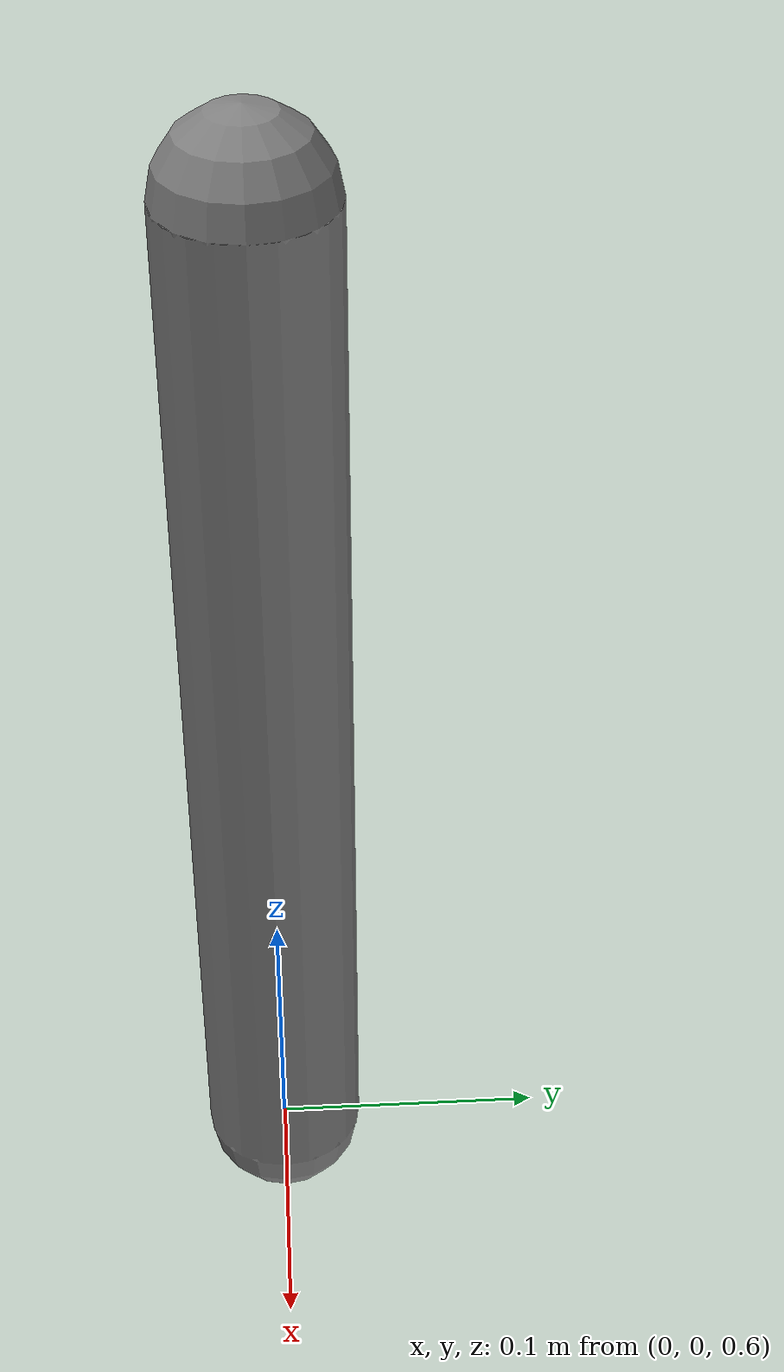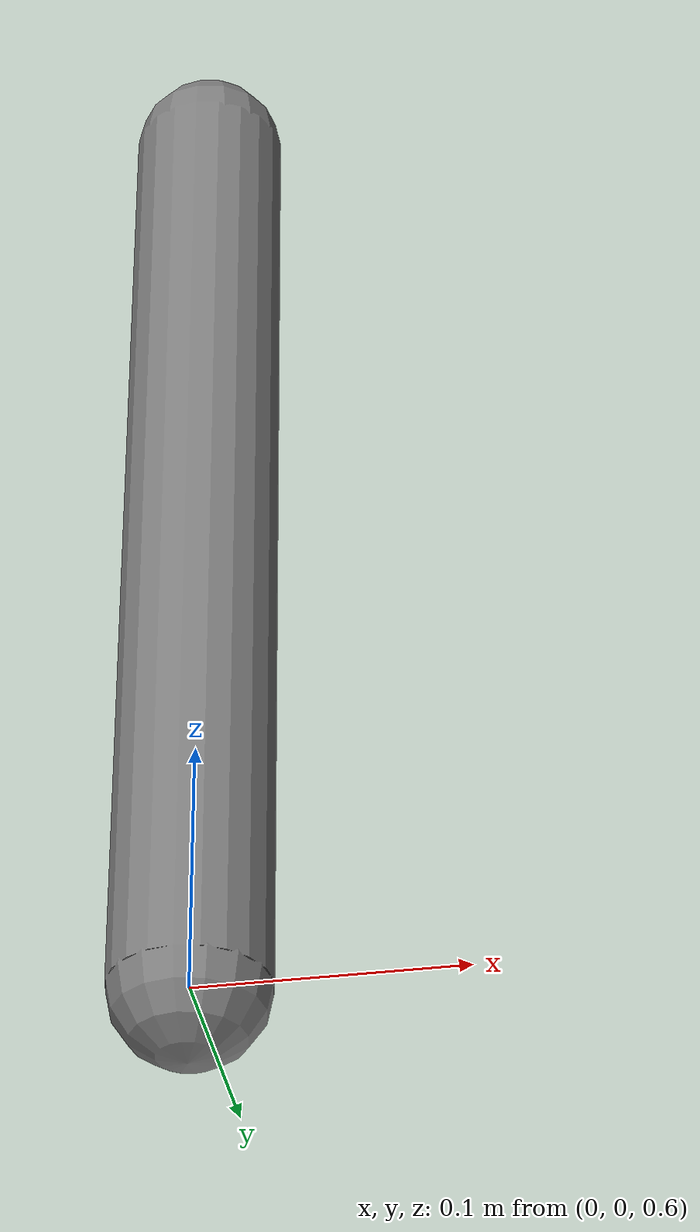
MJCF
<mujoco model="multi-tendon">
  <option gravity="0 0 -9.81" timestep="0.002"/>
  <compiler angle="radian"/>
  <worldbody>
    <body name="b" pos="0 0 1">
      <joint name="j" type="hinge" axis="0 1 0"/>
      <geom type="capsule" size="0.03" fromto="0 0 0 0 0 -0.4" mass="0.5"/>
    </body>
  </worldbody>
  <tendon>
    <fixed name="t1">
      <joint joint="j" coef="2.0"/>
    </fixed>
    <fixed name="t2">
      <joint joint="j" coef="-3.0"/>
    </fixed>
  </tendon>
</mujoco>
